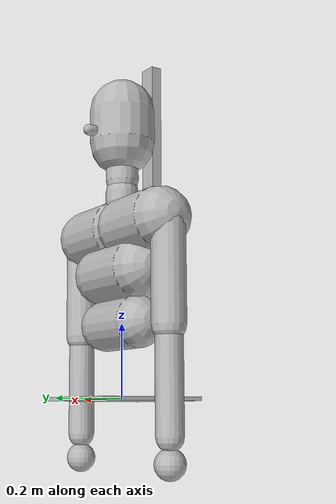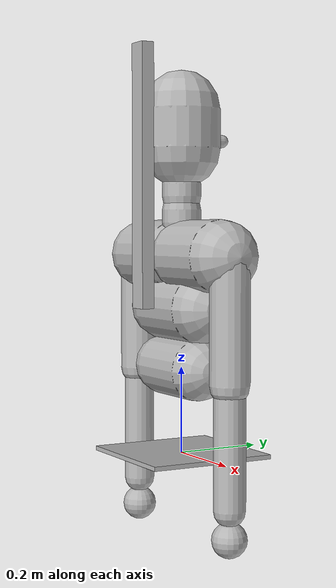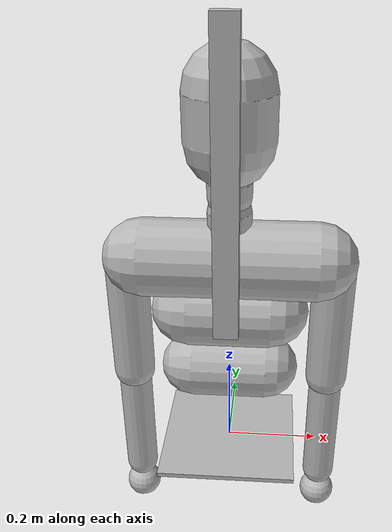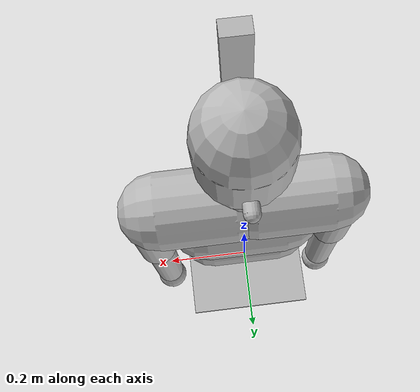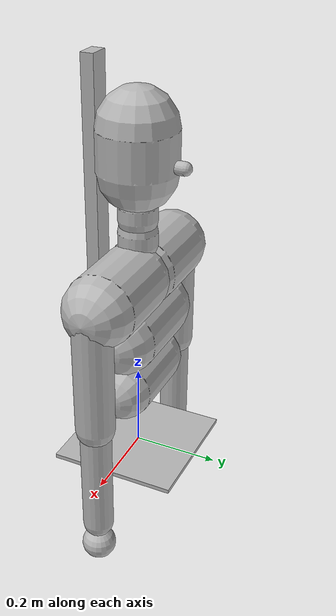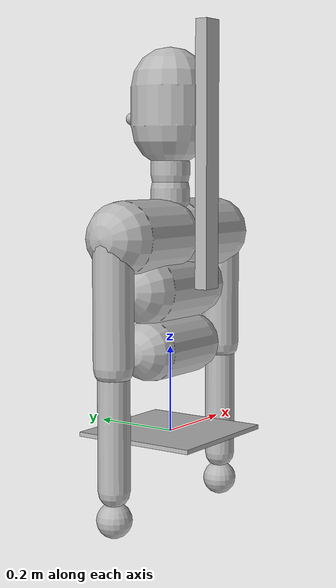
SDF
<?xml version='1.0' ?>
<!-- Humanoid model
Toyota Research Institute-->
<sdf version='1.7'>
  <model name='humanoid_v1'>
    <pose>0.0 0.0 0 0 0 0</pose>

    <link name='base'>
      <pose>0 0 0 0 0 0</pose>
      <inertial>
        <mass>50</mass>
        <pose>0 0 0 0 0 0</pose>
      </inertial>
      <visual name="cube_base">
        <pose>0 0 0 0 0 0</pose>
        <geometry>
          <box>
            <size>0.3 0.3 0.01</size>
          </box>
        </geometry>
        <material>
          <specular>1 1 0.1 1</specular>
        </material>
      </visual>
      <visual name="tower_base">
        <pose>0 -0.1 0.64 0 0 0</pose>
        <geometry>
          <box>
            <size>0.05 0.03 0.6</size>
          </box>
        </geometry>
        <material>
          <specular>0.4 0.1 0.1 1</specular>
        </material>
      </visual>
    </link>

    <link name='waist'>
      <pose relative_to='base'>0 0 0.2 0 0 0</pose>
      <inertial>
        <mass>12</mass>
        <pose>0 0 0 0 0 0</pose>
      </inertial>
      <visual name="cap_waist">
        <pose>0 0 0 0 1.5708 0</pose>
        <geometry>
          <capsule>
            <radius>0.07</radius>
            <length>0.16</length>
          </capsule>
        </geometry>
        <material>
          <specular>1 1 0.1 1</specular>
        </material>
      </visual>
      <collision name="col_cap_waist">
        <pose>0 0 0 0 1.5708 0</pose>
        <geometry>
          <capsule>
            <radius>0.07</radius>
            <length>0.16</length>
          </capsule>
        </geometry>
        <surface>
          <friction>
            <ode>
              <mu>0.5</mu>
              <mu2>0.5</mu2>
            </ode>
          </friction>
        </surface>
        <drake:proximity_properties>
          <drake:rigid_hydroelastic/>
          <drake:mesh_resolution_hint>0.05</drake:mesh_resolution_hint>
          <drake:hunt_crossley_dissipation>1.0</drake:hunt_crossley_dissipation>
        </drake:proximity_properties>
      </collision>
    </link>

    <link name='torso'>
      <pose relative_to='waist'>0 0 0.20 0 0 0</pose>
      <inertial>
        <mass>16</mass>
        <pose>0 0 0 0 0 0</pose>
      </inertial>
      <visual name="cap_upper_L">
        <pose>-0.1 0 0.06 0 1.5708 0</pose>
        <geometry>
          <capsule>
            <radius>0.082</radius>
            <length>0.16</length>
          </capsule>
        </geometry>
      </visual>
      <collision name="col_cap_upper_L">
        <pose>-0.1 0 0.06 0 1.5708 0</pose>
        <geometry>
          <capsule>
            <radius>0.082</radius>
            <length>0.16</length>
          </capsule>
        </geometry>
        <surface>
          <friction>
            <ode>
              <mu>0.5</mu>
              <mu2>0.5</mu2>
            </ode>
          </friction>
        </surface>
        <drake:proximity_properties>
          <drake:rigid_hydroelastic/>
          <drake:mesh_resolution_hint>0.05</drake:mesh_resolution_hint>
          <drake:hunt_crossley_dissipation>1.0</drake:hunt_crossley_dissipation>
        </drake:proximity_properties>
      </collision>
      <visual name="cap_upper_R">
        <pose>0.1 0 0.06 0 1.5708 0</pose>
        <geometry>
          <capsule>
            <radius>0.082</radius>
            <length>0.16</length>
          </capsule>
        </geometry>
      </visual>
      <collision name="col_cap_upper_R">
        <pose>0.1 0 0.06 0 1.5708 0</pose>
        <geometry>
          <capsule>
            <radius>0.082</radius>
            <length>0.16</length>
          </capsule>
        </geometry>
        <surface>
          <friction>
            <ode>
              <mu>0.5</mu>
              <mu2>0.5</mu2>
            </ode>
          </friction>
        </surface>
        <drake:proximity_properties>
          <drake:rigid_hydroelastic/>
          <drake:mesh_resolution_hint>0.05</drake:mesh_resolution_hint>
          <drake:hunt_crossley_dissipation>1.0</drake:hunt_crossley_dissipation>
        </drake:proximity_properties>
      </collision>
      <visual name="cap_lower">
        <pose>0 0.005 -0.06 0 1.5708 0</pose>
        <geometry>
          <capsule>
            <radius>0.08</radius>
            <length>0.175</length>
          </capsule>
        </geometry>
        <material>
          <specular>1 1 0.1 1</specular>
        </material>
      </visual>
      <collision name="col_cap_lower">
        <pose>0 0.005 -0.06 0 1.5708 0</pose>
        <geometry>
          <capsule>
            <radius>0.08</radius>
            <length>0.175</length>
          </capsule>
        </geometry>
        <surface>
          <friction>
            <ode>
              <mu>0.5</mu>
              <mu2>0.5</mu2>
            </ode>
          </friction>
        </surface>
        <drake:proximity_properties>
          <drake:rigid_hydroelastic/>
          <drake:mesh_resolution_hint>0.05</drake:mesh_resolution_hint>
          <drake:hunt_crossley_dissipation>1.0</drake:hunt_crossley_dissipation>
        </drake:proximity_properties>
      </collision>
      <visual name="cap_lower_neck">
        <pose>0 0 0.15 0 0 0</pose>
        <geometry>
          <capsule>
            <radius>0.045</radius>
            <length>0.03</length>
          </capsule>
        </geometry>
      </visual>
      <collision name="col_cap_lower_neck">
        <pose>0 0 0.15 0 0 0</pose>
        <geometry>
          <capsule>
            <radius>0.045</radius>
            <length>0.03</length>
          </capsule>
        </geometry>
        <surface>
          <friction>
            <ode>
              <mu>0.5</mu>
              <mu2>0.5</mu2>
            </ode>
          </friction>
        </surface>
        <drake:proximity_properties>
          <drake:rigid_hydroelastic/>
          <drake:mesh_resolution_hint>0.05</drake:mesh_resolution_hint>
          <drake:hunt_crossley_dissipation>1.0</drake:hunt_crossley_dissipation>
        </drake:proximity_properties>
      </collision>
    </link>

    <link name='head'>
      <pose relative_to='torso'>0 0 0.35 0 0 0</pose>
      <inertial>
        <mass>6.4</mass>
      </inertial>
      <visual name="cap_face">
        <pose>0 0 0 0 0 0</pose>
        <geometry>
          <capsule>
            <radius>0.09</radius>
            <length>0.09</length>
          </capsule>
        </geometry>
      </visual>
      <visual name="cap_nose">
        <pose>0 0.1 -0.025 1.5708 0 0</pose>
        <geometry>
          <capsule>
            <radius>0.015</radius>
            <length>0.015</length>
          </capsule>
        </geometry>
      </visual>
      <collision name="col_cap_face">
        <pose>0 0 0 0 0 0</pose>
        <geometry>
          <capsule>
            <radius>0.09</radius>
            <length>0.09</length>
          </capsule>
        </geometry>
        <surface>
          <friction>
            <ode>
              <mu>0.5</mu>
              <mu2>0.5</mu2>
            </ode>
          </friction>
        </surface>
        <drake:proximity_properties>
          <drake:rigid_hydroelastic/>
          <drake:mesh_resolution_hint>0.05</drake:mesh_resolution_hint>
          <drake:hunt_crossley_dissipation>1.0</drake:hunt_crossley_dissipation>
        </drake:proximity_properties>
      </collision>
      <visual name="cap_upper_neck">
        <pose>0 0 -0.14 0 0 0</pose>
        <geometry>
          <capsule>
            <radius>0.045</radius>
            <length>0.03</length>
          </capsule>
        </geometry>
      </visual>
      <collision name="col_cap_upper_neck">
        <pose>0 0 -0.14 0 0 0</pose>
        <geometry>
          <capsule>
            <radius>0.045</radius>
            <length>0.03</length>
          </capsule>
        </geometry>
        <surface>
          <friction>
            <ode>
              <mu>0.5</mu>
              <mu2>0.5</mu2>
            </ode>
          </friction>
        </surface>
        <drake:proximity_properties>
          <drake:rigid_hydroelastic/>
          <drake:mesh_resolution_hint>0.05</drake:mesh_resolution_hint>
          <drake:hunt_crossley_dissipation>1.0</drake:hunt_crossley_dissipation>
        </drake:proximity_properties>
      </collision>
    </link>

    <link name='arm_L'>
      <pose relative_to='torso'>0.215 0 -0.08 0 0 0</pose>
      <inertial>
        <mass>2.4</mass>
      </inertial>
      <visual name="cyl_arm">
        <pose>0 0 0 0 0 0</pose>
        <geometry>
          <capsule>
            <radius>0.045</radius>
            <length>0.28</length>
          </capsule>
        </geometry>
      </visual>
      <collision name="col_cyl_arm">
        <pose>0 0 0 0 0 0</pose>
        <geometry>
          <capsule>
            <radius>0.045</radius>
            <length>0.28</length>
          </capsule>
        </geometry>
        <surface>
          <friction>
            <ode>
              <mu>0.5</mu>
              <mu2>0.5</mu2>
            </ode>
          </friction>
        </surface>
        <drake:proximity_properties>
          <drake:rigid_hydroelastic/>
          <drake:mesh_resolution_hint>0.05</drake:mesh_resolution_hint>
          <drake:hunt_crossley_dissipation>1.0</drake:hunt_crossley_dissipation>
        </drake:proximity_properties>
      </collision>
    </link>

    <link name='forearm_L'>
      <pose relative_to='arm_L'>0 0 -0.29 0 0 0</pose>
      <inertial>
        <mass>1.4</mass>
      </inertial>
      <visual name="cyl_arm">
        <pose>0 0 0 0 0 0</pose>
        <geometry>
          <capsule>
            <radius>0.036</radius>
            <length>0.25</length>
          </capsule>
        </geometry>
      </visual>
      <collision name="col_cyl_arm">
        <pose>0 0 0 0 0 0</pose>
        <geometry>
          <capsule>
            <radius>0.036</radius>
            <length>0.25</length>
          </capsule>
        </geometry>
        <surface>
          <friction>
            <ode>
              <mu>0.5</mu>
              <mu2>0.5</mu2>
            </ode>
          </friction>
        </surface>
        <drake:proximity_properties>
          <drake:rigid_hydroelastic/>
          <drake:mesh_resolution_hint>0.05</drake:mesh_resolution_hint>
          <drake:hunt_crossley_dissipation>1.0</drake:hunt_crossley_dissipation>
        </drake:proximity_properties>
      </collision>
    </link>

    <link name='hand_L'>
      <pose relative_to='forearm_L'>0 0 -0.19 0 0 0</pose>
      <inertial>
        <mass>0.5</mass>
      </inertial>
      <visual name="ellip_hand">
        <pose>0 0 0 0 0 0</pose>
        <geometry>
          <sphere>
            <radius>0.04</radius>
          </sphere>
        </geometry>
      </visual>
      <collision name="col_ellip_hand">
        <pose>0 0 0 0 0 0</pose>
        <geometry>
          <sphere>
            <radius>0.04</radius>
          </sphere>
        </geometry>
        <surface>
          <friction>
            <ode>
              <mu>0.5</mu>
              <mu2>0.5</mu2>
            </ode>
          </friction>
        </surface>
        <drake:proximity_properties>
          <drake:rigid_hydroelastic/>
          <drake:mesh_resolution_hint>0.05</drake:mesh_resolution_hint>
          <drake:hunt_crossley_dissipation>1.0</drake:hunt_crossley_dissipation>
        </drake:proximity_properties>
      </collision>
    </link>

    <link name='arm_R'>
      <pose relative_to='torso'>-0.215 0 -0.08 0 0 0</pose>
      <inertial>
        <mass>2.4</mass>
      </inertial>
      <visual name="cyl_arm">
        <pose>0 0 0 0 0 0</pose>
        <geometry>
          <capsule>
            <radius>0.045</radius>
            <length>0.28</length>
          </capsule>
        </geometry>
      </visual>
      <collision name="col_cyl_arm">
        <pose>0 0 0 0 0 0</pose>
        <geometry>
          <capsule>
            <radius>0.045</radius>
            <length>0.28</length>
          </capsule>
        </geometry>
        <surface>
          <friction>
            <ode>
              <mu>0.5</mu>
              <mu2>0.5</mu2>
            </ode>
          </friction>
        </surface>
        <drake:proximity_properties>
          <drake:rigid_hydroelastic/>
          <drake:mesh_resolution_hint>0.05</drake:mesh_resolution_hint>
          <drake:hunt_crossley_dissipation>1.0</drake:hunt_crossley_dissipation>
        </drake:proximity_properties>
      </collision>
    </link>

    <link name='forearm_R'>
      <pose relative_to='arm_R'>0 0 -0.29 0 0 0</pose>
      <inertial>
        <mass>1.4</mass>
      </inertial>
      <visual name="cyl_arm">
        <pose>0 0 0 0 0 0</pose>
        <geometry>
          <capsule>
            <radius>0.036</radius>
            <length>0.25</length>
          </capsule>
        </geometry>
      </visual>
      <collision name="col_cyl_arm">
        <pose>0 0 0 0 0 0</pose>
        <geometry>
          <capsule>
            <radius>0.036</radius>
            <length>0.25</length>
          </capsule>
        </geometry>
        <surface>
          <friction>
            <ode>
              <mu>0.5</mu>
              <mu2>0.5</mu2>
            </ode>
          </friction>
        </surface>
        <drake:proximity_properties>
          <drake:rigid_hydroelastic/>
          <drake:mesh_resolution_hint>0.05</drake:mesh_resolution_hint>
          <drake:hunt_crossley_dissipation>1.0</drake:hunt_crossley_dissipation>
        </drake:proximity_properties>
      </collision>
    </link>

    <link name='hand_R'>
      <pose relative_to='forearm_R'>0 0 -0.19 0 0 0</pose>
      <inertial>
        <mass>0.5</mass>
      </inertial>
      <visual name="ellip_hand">
        <pose>0 0 0 0 0 0</pose>
        <geometry>
          <sphere>
            <radius>0.04</radius>
          </sphere>
        </geometry>
      </visual>
      <collision name="col_ellip_hand">
        <pose>0 0 0 0 0 0</pose>
        <geometry>
          <sphere>
            <radius>0.04</radius>
          </sphere>
        </geometry>
        <surface>
          <friction>
            <ode>
              <mu>0.5</mu>
              <mu2>0.5</mu2>
            </ode>
          </friction>
        </surface>
        <drake:proximity_properties>
          <drake:rigid_hydroelastic/>
          <drake:mesh_resolution_hint>0.05</drake:mesh_resolution_hint>
          <drake:hunt_crossley_dissipation>1.0</drake:hunt_crossley_dissipation>
        </drake:proximity_properties>
      </collision>
    </link>

    <!-- universal joint for neck -->
    <link name='glue_torso_neck'>
      <pose relative_to='torso'>0 0.0 0.18 0 0 0</pose>
      <inertial>
        <mass>0.1</mass>
      </inertial>
    </link>

    <joint name='neck_joint1' type='fixed'>
      <parent>torso</parent>
      <child>glue_torso_neck</child>
      <pose>0 0 0 0 0 0</pose>
      <drake:gear_ratio>1 </drake:gear_ratio>
      <axis>
        <xyz>1.0 0.0 0.0</xyz>
        <limit>
          <lower>-1.2</lower>
          <upper>0.5</upper>
          <effort>-1.0</effort>
        </limit>
      </axis>
    </joint>
    <joint name='neck_joint2' type='fixed'>
      <parent>glue_torso_neck</parent>
      <child>head</child>
      <pose>0 0 -0.17 0 0 0</pose>
      <drake:gear_ratio>1 </drake:gear_ratio>
      <axis>
        <xyz>0.0 1.0 0.0</xyz>
        <limit>
          <lower>-0.6</lower>
          <upper>0.6</upper>
          <effort>-1.0</effort>
        </limit>
      </axis>
    </joint>

    <!-- universal joint for shoulder L-->
    <link name='glue_torso_armL'>
      <pose relative_to='torso'>0.215 0.0 0.07 0 0 0</pose>
      <inertial>
        <mass>0.1</mass>
      </inertial>
    </link>

    <joint name='shoulderL_joint1' type='revolute'>
      <parent>torso</parent>
      <child>glue_torso_armL</child>
      <pose>0 0 0 0 0 0 </pose>
      <axis>
        <xyz>1.0 0.0 0.0</xyz>
        <limit>
          <lower>-0.5</lower>
          <upper>3.1416</upper>
          <effort>-1.0</effort>
        </limit>
      </axis>
    </joint>
    <joint name='shoulderL_joint2' type='revolute'>
      <parent>glue_torso_armL</parent>
      <child>arm_L</child>
      <pose>0 0 0.16 0 0 0 </pose>
      <axis>
        <xyz>0.0 1.0 0.0</xyz>
        <limit>
          <lower>-1.5708</lower>
          <upper>0.7853</upper>
          <effort>-1.0</effort>
        </limit>
      </axis>
    </joint>

    <!-- universal joint for elbow L-->
    <link name='glue_arm_forearmL'>
      <pose relative_to='arm_L'>0 0.0 -0.15 0 0 0</pose>
      <inertial>
        <mass>0.1</mass>
      </inertial>
    </link>

    <joint name='elbowL_joint1' type='revolute'>
      <parent>arm_L</parent>
      <child>glue_arm_forearmL</child>
      <pose>0 0 0 0 0 0 </pose>
      <axis>
        <xyz>1.0 0.0 0.0</xyz>
        <limit>
          <lower>-0.01</lower>
          <upper>2.3</upper>
          <effort>-1.0</effort>
        </limit>
      </axis>
    </joint>
    <joint name='elbowL_joint2' type='revolute'>
      <parent>glue_arm_forearmL</parent>
      <child>forearm_L</child>
      <pose>0 0 0.15 0 0 0 </pose>
      <axis>
        <xyz>0.0 1.0 0.0</xyz>
        <limit>
          <lower>-0.01</lower>
          <upper>1.0</upper>
          <effort>-1.0</effort>
        </limit>
      </axis>
    </joint>

    <!-- revolute joint for wrist L -->
    <joint name='wristL_joint' type='revolute'>
      <parent>forearm_L</parent>
      <child>hand_L</child>
      <pose>0 0 0.05 0 0 0 </pose>
      <axis>
        <xyz>1.0 0.0 0.0</xyz>
        <limit>
          <lower>-1.5</lower>
          <upper>1.5</upper>
          <effort>-1.0</effort>
        </limit>
      </axis>
    </joint>

   <!-- universal joint for shoulder R-->
    <link name='glue_torso_armR'>
      <pose relative_to='torso'>-0.215 0.0 0.07 0 0 0</pose>
      <inertial>
        <mass>0.1</mass>
      </inertial>
    </link>

    <joint name='shoulderR_joint1' type='revolute'>
      <parent>torso</parent>
      <child>glue_torso_armR</child>
      <pose>0 0 0 0 0 0 </pose>
      <axis>
        <xyz>1.0 0.0 0.0</xyz>
        <limit>
          <lower>-0.5</lower>
          <upper>3.1416</upper>
          <effort>-1.0</effort>
        </limit>
      </axis>
    </joint>
    <joint name='shoulderR_joint2' type='revolute'>
      <parent>glue_torso_armR</parent>
      <child>arm_R</child>
      <pose>0 0 0.16 0 0 3.1416 </pose>
      <axis>
        <xyz>0.0 1.0 0.0</xyz>
        <limit>
          <lower>-1.5708</lower>
          <upper>0.7853</upper>
          <effort>-1.0</effort>
        </limit>
      </axis>
    </joint>

    <!-- universal joint for elbow R-->
    <link name='glue_arm_forearmR'>
      <pose relative_to='arm_R'>0 0.0 -0.15 0 0 0</pose>
      <inertial>
        <mass>0.1</mass>
      </inertial>
    </link>

    <joint name='elbowR_joint1' type='revolute'>
      <parent>arm_R</parent>
      <child>glue_arm_forearmR</child>
      <pose>0 0 0 0 0 0 </pose>
      <axis>
        <xyz>1.0 0.0 0.0</xyz>
        <limit>
          <lower>-0.01</lower>
          <upper>2.3</upper>
          <effort>-1.0</effort>
        </limit>
      </axis>
    </joint>
    <joint name='elbowR_joint2' type='revolute'>
      <parent>glue_arm_forearmR</parent>
      <child>forearm_R</child>
      <pose>0 0 0.15 3.1416 0 0 </pose>
      <axis>
        <xyz>0.0 1.0 0.0</xyz>
        <limit>
          <lower>-0.01</lower>
          <upper>1.0</upper>
          <effort>-1.0</effort>
        </limit>
        <dynamics>
        </dynamics>
      </axis>
    </joint>

    <!-- revolute joint for wrist R-->
    <joint name='wristR_joint' type='revolute'>
      <parent>forearm_R</parent>
      <child>hand_R</child>
      <pose>0 0 0.05 0 0 0 </pose>
      <axis>
        <xyz>1.0 0.0 0.0</xyz>
        <limit>
          <lower>-1.5</lower>
          <upper>1.5</upper>
          <effort>-1.0</effort>
        </limit>
        <dynamics>
        </dynamics>
      </axis>
    </joint>

    <!-- ball joint for torso and waist link -->
    <link name='glue_torso_waist1'>
      <pose relative_to='waist'>0 0.0 0.065 0 0 0</pose>
      <inertial>
        <mass>0.1</mass>
      </inertial>
    </link>

    <link name='glue_torso_waist2'>
      <pose relative_to='waist'>0 0.0 0.065 0 0 0</pose>
      <inertial>
        <mass>0.1</mass>
      </inertial>
    </link>

    <joint name='torso_joint1' type='revolute'>
      <parent>waist</parent>
      <child>glue_torso_waist1</child>
      <pose>0 0 0 0 0 0</pose>
      <axis>
        <xyz>1.0 0.0 0.0</xyz>
        <limit>
          <lower>-0.3</lower>
          <upper>0.05</upper>
          <effort>-1.0</effort>
        </limit>
        <dynamics>
        </dynamics>
      </axis>
    </joint>
    <joint name='torso_joint2' type='revolute'>
      <parent>glue_torso_waist1</parent>
      <child>glue_torso_waist2</child>
      <pose>0 0 0 0 0 0</pose>
      <axis>
        <xyz>0.0 1.0 0.0</xyz>
        <limit>
          <lower>-0.13</lower>
          <upper>0.13</upper>
          <effort>-1.0</effort>
        </limit>
        <dynamics>
        </dynamics>
      </axis>
    </joint>
    <joint name='torso_joint3' type='revolute'>
      <parent>glue_torso_waist2</parent>
      <child>torso</child>
      <pose>0 0 0 0 0 0</pose>
      <axis>
        <xyz>0.0 0.0 1.0</xyz>
        <limit>
          <lower>-0.6</lower>
          <upper>0.6</upper>
          <effort>-1.0</effort>
        </limit>
        <dynamics>
        </dynamics>
      </axis>
    </joint>

    <joint name='prismatic_z' type='prismatic'>
      <parent>base</parent>
      <child>waist</child>
      <pose>0 0 0 0 0 0</pose>
      <axis>
        <xyz>0.0 0.0 1.0</xyz>
        <limit>
          <lower>0</lower>
          <upper>0.6</upper>
          <effort>-1.0</effort>
        </limit>
        <dynamics>
        </dynamics>
      </axis>
    </joint>

    <!-- Ignore collisions within this model -->
    <drake:collision_filter_group name="all_links">
      <drake:member>base</drake:member>
      <drake:member>waist</drake:member>
      <drake:member>torso</drake:member>
      <drake:member>head</drake:member>
      <drake:member>arm_L</drake:member>
      <drake:member>forearm_L</drake:member>
      <drake:member>hand_L</drake:member>
      <drake:member>arm_R</drake:member>
      <drake:member>forearm_R</drake:member>
      <drake:member>hand_R</drake:member>
      <drake:ignored_collision_filter_group>all_links</drake:ignored_collision_filter_group>
    </drake:collision_filter_group>

  </model>
</sdf>
